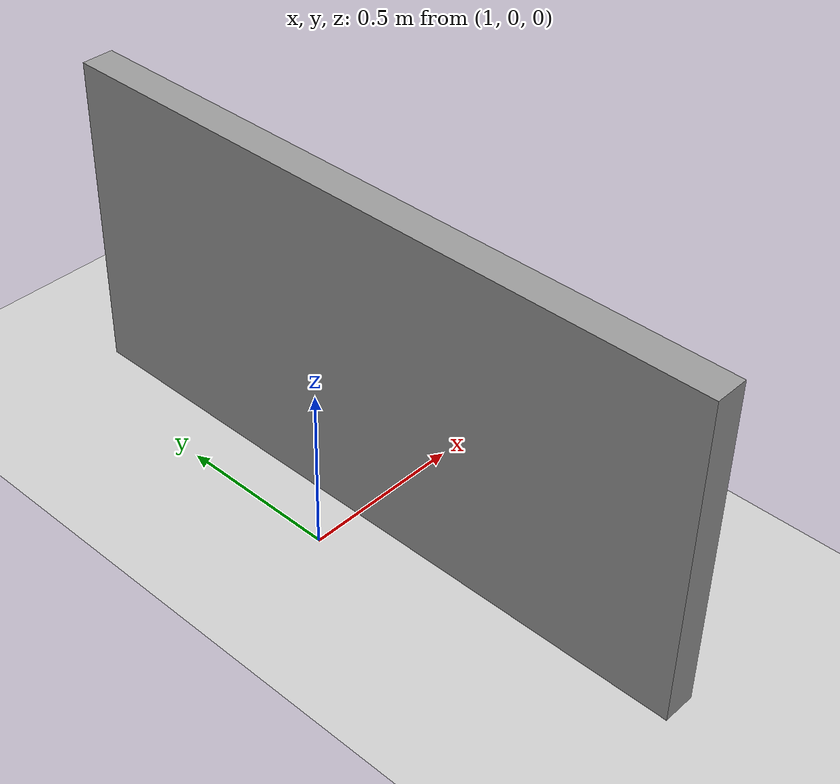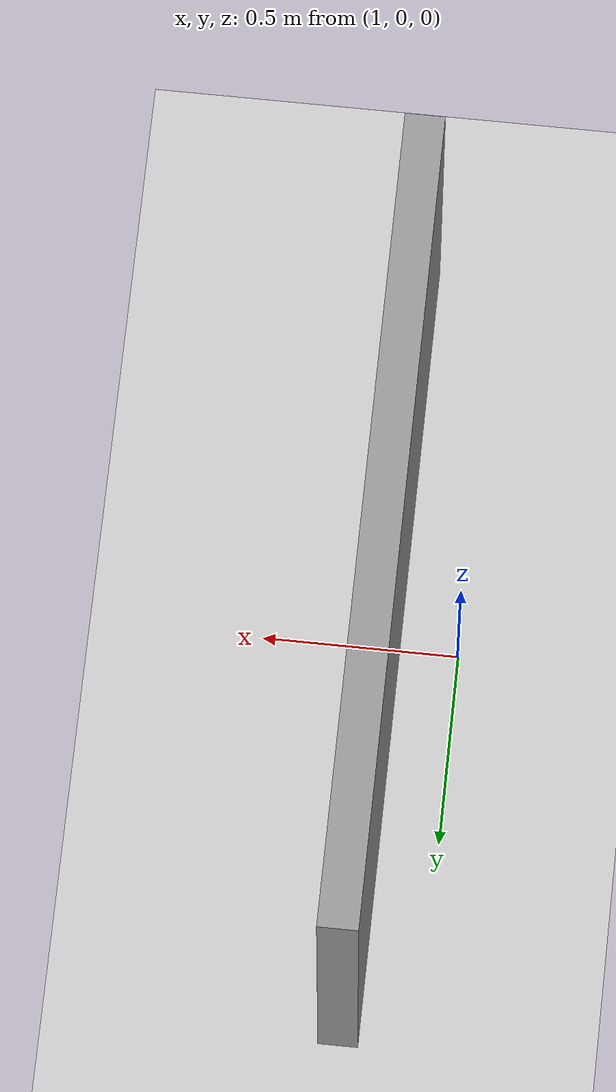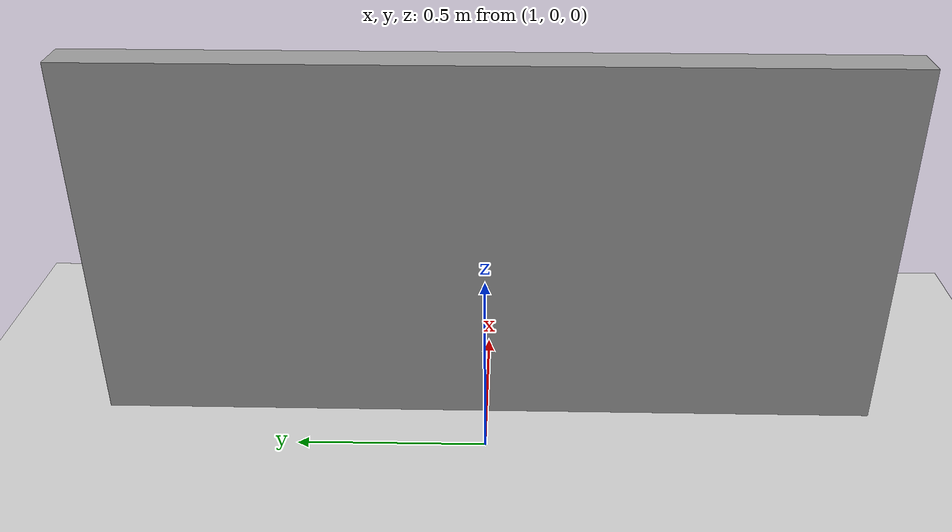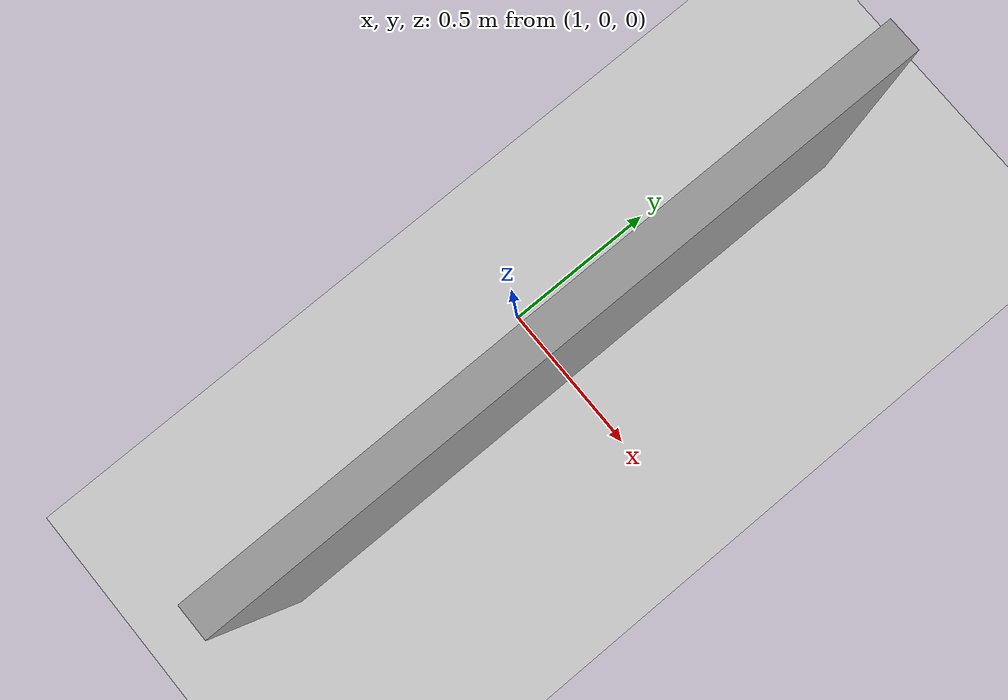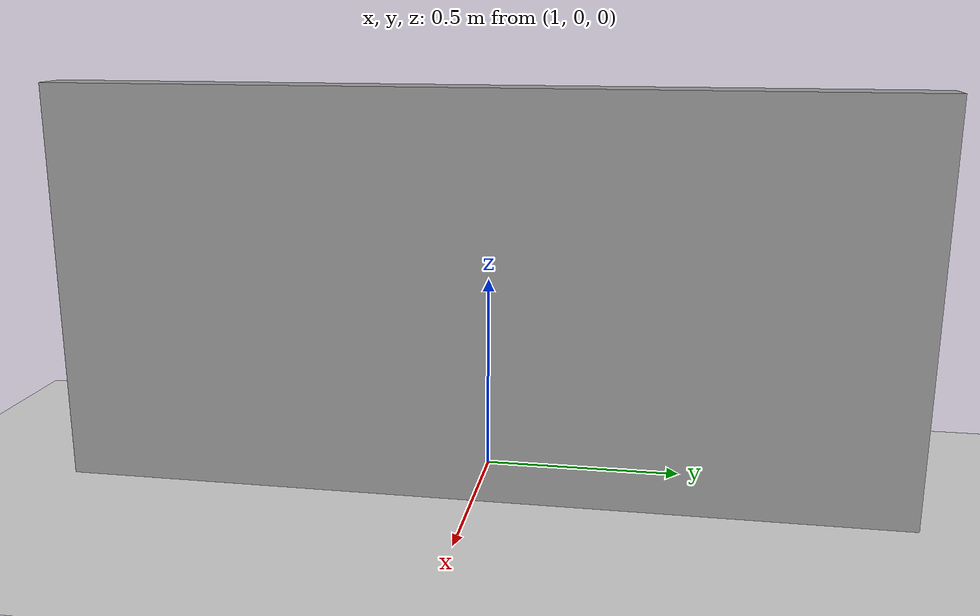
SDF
<sdf version="1.7">
 <world name="default">
  <light name="sun" type="directional">
   <pose>0 0 10 0 -0 0</pose>
   <diffuse>0.8 0.8 0.8 1</diffuse>
   <specular>0.2 0.2 0.2 1</specular>
   <attenuation>
    <range>1000</range>
    <constant>0.9</constant>
    <linear>0.01</linear>
    <quadratic>0.001</quadratic>
   </attenuation>
   <direction>-0.5 0.1 -0.9</direction>
   <spot><inner_angle>0</inner_angle><outer_angle>0</outer_angle><falloff>0</falloff></spot>
  </light>
  <model name="ground_plane">
   <static>1</static>
   <link name="link">
    <collision name="collision">
     <geometry><plane><normal>0 0 1</normal><size>100 100</size></plane></geometry>
     <surface><friction><ode><mu>100</mu><mu2>50</mu2></ode></friction></surface>
    </collision>
    <visual name="visual">
     <cast_shadows>0</cast_shadows>
     <geometry><plane><normal>0 0 1</normal><size>100 100</size></plane></geometry>
     <material>
      <script><uri>file://media/materials/scripts/gazebo.material</uri><name>Gazebo/Grey</name></script>
     </material>
    </visual>
   </link>
  </model>
  <gravity>0 0 -9.8</gravity>
  <magnetic_field>6e-06 2.3e-05 -4.2e-05</magnetic_field>
  <atmosphere type="adiabatic"/>
  <physics type="ode">
   <max_step_size>0.001</max_step_size>
   <real_time_factor>1</real_time_factor>
   <real_time_update_rate>1000</real_time_update_rate>
  </physics>
  <scene><ambient>0.4 0.4 0.4 1</ambient><background>0.7 0.7 0.7 1</background><shadows>1</shadows></scene>
  <spherical_coordinates>
   <surface_model>EARTH_WGS84</surface_model>
   <latitude_deg>0</latitude_deg>
   <longitude_deg>0</longitude_deg>
   <elevation>0</elevation>
   <heading_deg>0</heading_deg>
  </spherical_coordinates>
  <model name="wall">
   <pose>0.625 0 0 0 -0 0</pose>
   <link name="Wall_9">
    <collision name="Wall_9_Collision">
     <geometry><box><size>2.1 0.1 1</size></box></geometry>
     <pose>0 0 0.5 0 -0 0</pose>
    </collision>
    <visual name="Wall_9_Visual">
     <pose>0 0 0.5 0 -0 0</pose>
     <geometry><box><size>2.1 0.1 1</size></box></geometry>
     <material>
      <script><uri>file://media/materials/scripts/gazebo.material</uri><name>Gazebo/Grey</name></script>
      <ambient>1 1 1 1</ambient>
     </material>
     <meta><layer>0</layer></meta>
    </visual>
    <pose>0.575 0 0 0 -0 -1.5708</pose>
   </link>
   <static>1</static>
  </model>
  <light name="user_directional_light_0" type="directional">
   <pose>-48.8703 46.2734 1 0 -0 0</pose>
   <diffuse>0.5 0.5 0.5 1</diffuse>
   <specular>0.1 0.1 0.1 1</specular>
   <direction>0.1 0.1 -0.9</direction>
   <attenuation>
    <range>20</range>
    <constant>0.5</constant>
    <linear>0.01</linear>
    <quadratic>0.001</quadratic>
   </attenuation>
  </light>
  <light name="user_directional_light_1" type="directional">
   <pose>-48.7626 47.7944 1 0 -0 0</pose>
   <diffuse>0.5 0.5 0.5 1</diffuse>
   <specular>0.1 0.1 0.1 1</specular>
   <direction>0.1 0.1 -0.9</direction>
   <attenuation>
    <range>20</range>
    <constant>0.5</constant>
    <linear>0.01</linear>
    <quadratic>0.001</quadratic>
   </attenuation>
  </light>
  <light name="user_directional_light_2" type="directional">
   <pose>-48.2457 48.0511 1 0 -0 0</pose>
   <diffuse>0.5 0.5 0.5 1</diffuse>
   <specular>0.1 0.1 0.1 1</specular>
   <direction>0.1 0.1 -0.9</direction>
   <attenuation>
    <range>20</range>
    <constant>0.5</constant>
    <linear>0.01</linear>
    <quadratic>0.001</quadratic>
   </attenuation>
  </light>
  <light name="user_directional_light_3" type="directional">
   <pose>-48.2961 46.8251 1 0 -0 0</pose>
   <diffuse>0.5 0.5 0.5 1</diffuse>
   <specular>0.1 0.1 0.1 1</specular>
   <direction>0.1 0.1 -0.9</direction>
   <attenuation>
    <range>20</range>
    <constant>0.5</constant>
    <linear>0.01</linear>
    <quadratic>0.001</quadratic>
   </attenuation>
  </light>
  <light name="user_directional_light_4" type="directional">
   <pose>-48.4128 47.0649 1 0 -0 0</pose>
   <diffuse>0.5 0.5 0.5 1</diffuse>
   <specular>0.1 0.1 0.1 1</specular>
   <direction>0.1 0.1 -0.9</direction>
   <attenuation>
    <range>20</range>
    <constant>0.5</constant>
    <linear>0.01</linear>
    <quadratic>0.001</quadratic>
   </attenuation>
  </light>
  <light name="user_directional_light_5" type="directional">
   <pose>-46.0655 47.3858 1 0 -0 0</pose>
   <diffuse>0.5 0.5 0.5 1</diffuse>
   <specular>0.1 0.1 0.1 1</specular>
   <direction>0.1 0.1 -0.9</direction>
   <attenuation>
    <range>20</range>
    <constant>0.5</constant>
    <linear>0.01</linear>
    <quadratic>0.001</quadratic>
   </attenuation>
  </light>
 </world>
</sdf>
